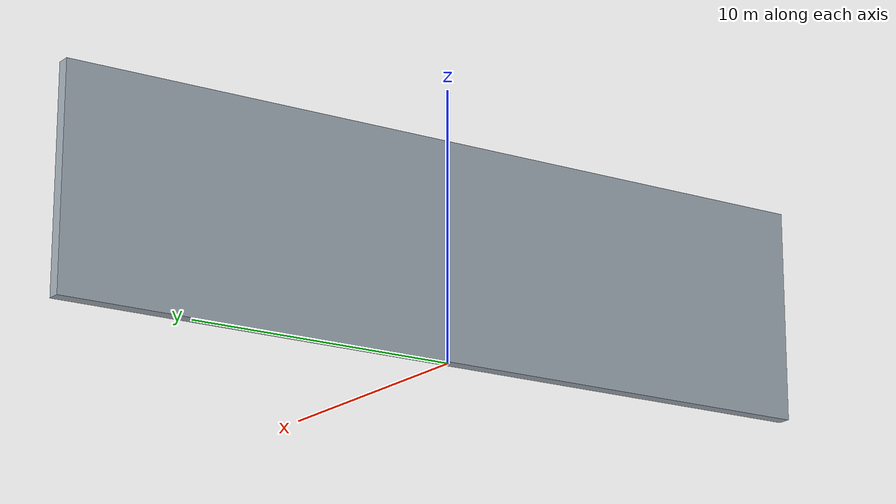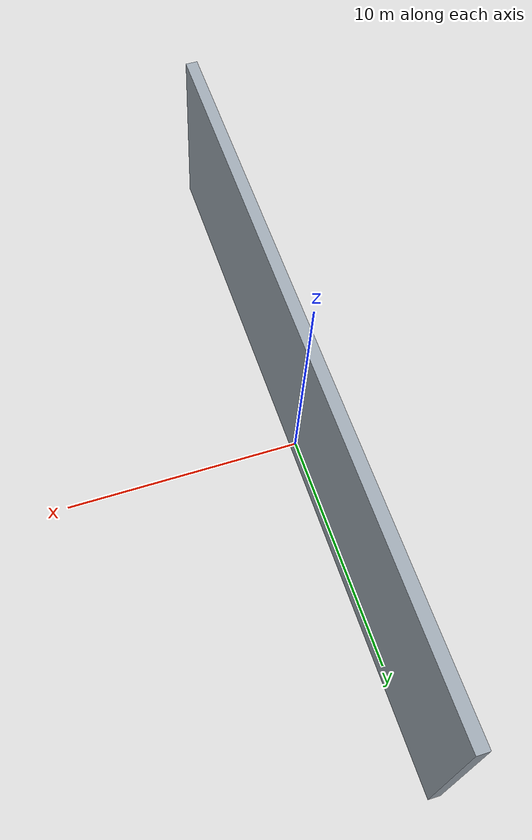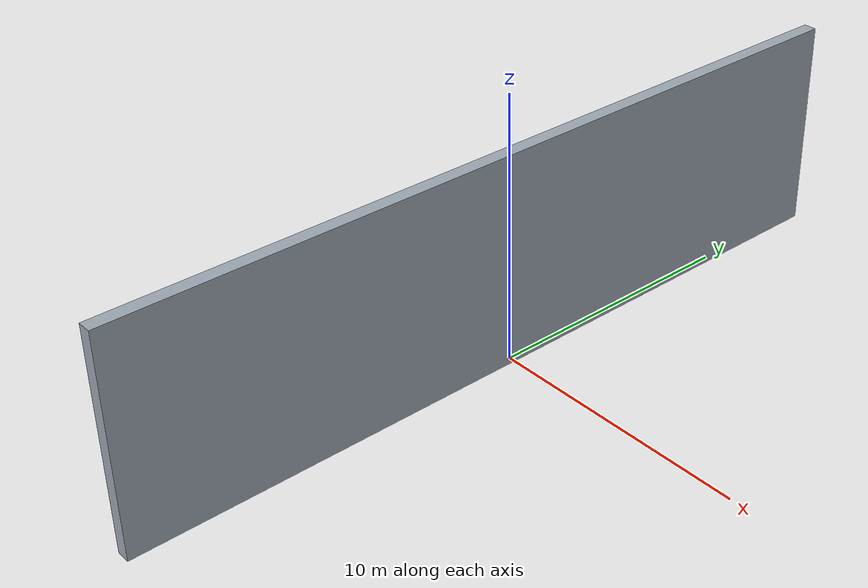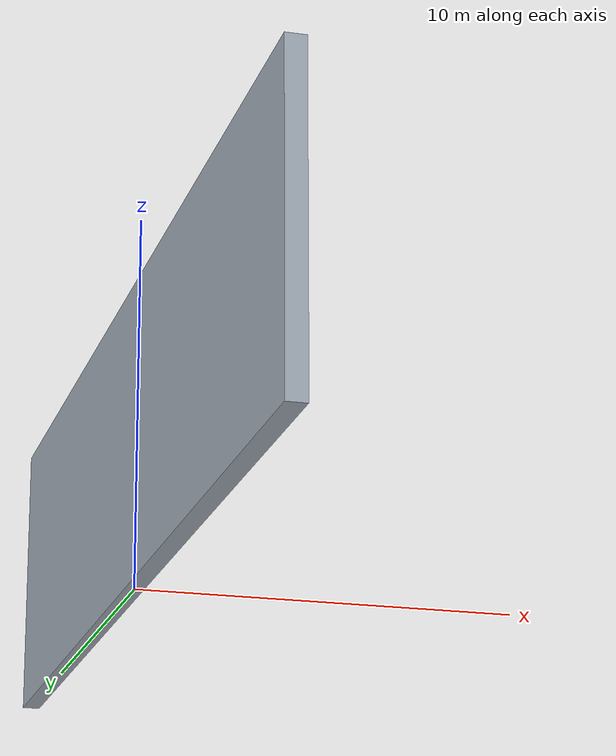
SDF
<?xml version="1.0"?>
<sdf version="1.6">
  <model name="sparse_wide_wall">
    <static>true</static>
    <link name="wall_link">
      <collision name="wall_collision">
        <pose>0 0 4.0 0 0 0</pose>
        <geometry>
          <box>
            <size>0.50 30.00 8.00</size>
          </box>
        </geometry>
      </collision>
      <visual name="wall_visual">
        <pose>0 0 4.0 0 0 0</pose>
        <geometry>
          <box>
            <size>0.50 30.00 8.00</size>
          </box>
        </geometry>
        <material>
          <ambient>0.42 0.45 0.48 1</ambient>
          <diffuse>0.62 0.66 0.70 1</diffuse>
        </material>
      </visual>
    </link>
  </model>
</sdf>
